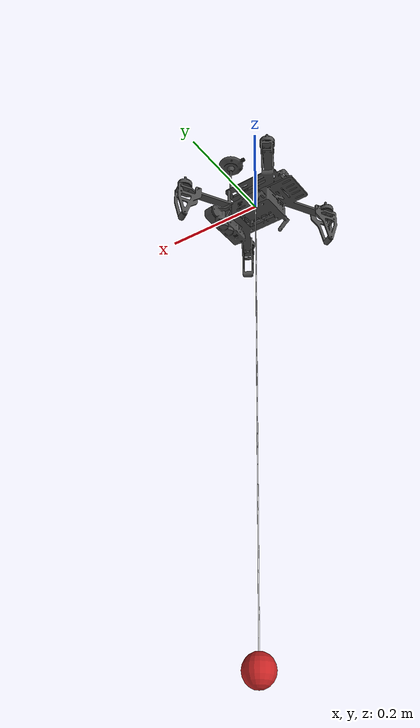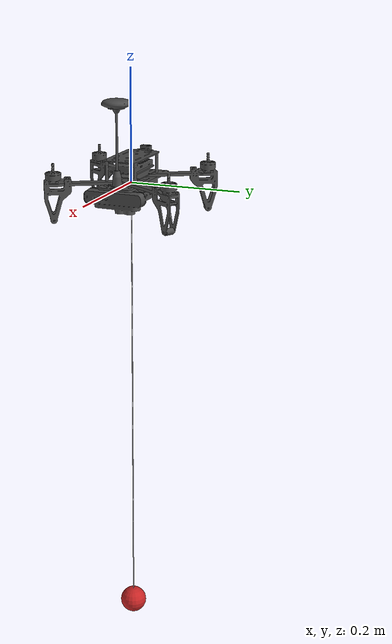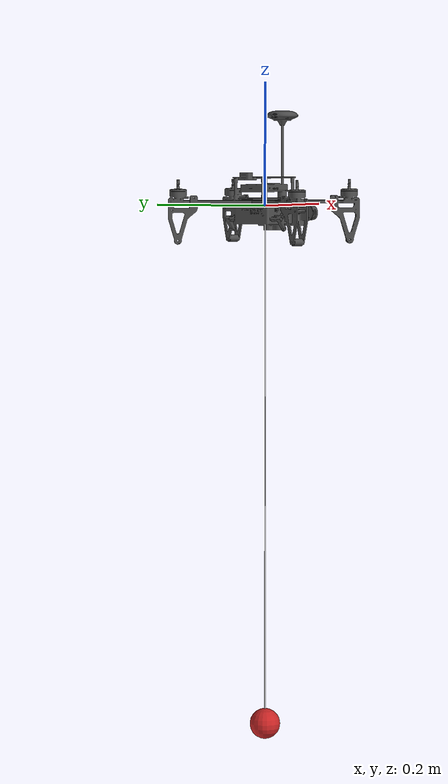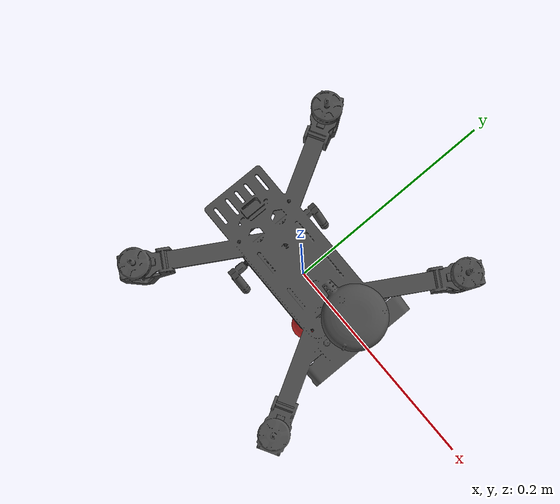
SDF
<?xml version='1.0'?>
<sdf version='1.6'>
  <enable_lockstep>false</enable_lockstep>
  <model name='px4vision_sls_gazebo'>
  <static>false</static>

  <link name='base_link'>
    <pose>0 0 0 0 -0 0</pose>
    <inertial>
      <pose>0 0 0 0 -0 0</pose>
      <mass>1.5</mass>
      <inertia>
        <ixx>0.029125</ixx>
        <ixy>0</ixy>
        <ixz>0</ixz>
        <iyy>0.029125</iyy>
        <iyz>0</iyz>
        <izz>0.055225</izz>
      </inertia>
    </inertial>
    <collision name='base_link_inertia_collision'>
      <pose>0 0 0 0 -0 0</pose>
      <geometry>
        <box>
          <size>0.365 0.365 0.11</size>
        </box>
      </geometry>
      <surface>
        <contact>
          <ode>
            <min_depth>0.001</min_depth>
            <max_vel>0</max_vel>
          </ode>
        </contact>
        <friction>
          <ode/>
        </friction>
      </surface>
    </collision>
    <visual name='base_link_inertia_visual'>
      <pose>0 0 0 1.5707 0 -0.01</pose>
      <geometry>
        <mesh>
          <scale>0.001 0.001 0.001</scale>
          <uri>model://px4vision/meshes/body.dae</uri>
        </mesh>
      </geometry>
      <material>
        <script>
          <name>Gazebo/DarkGrey</name>
          <uri>file://media/materials/scripts/gazebo.material</uri>
        </script>
      </material>
    </visual>
    <gravity>1</gravity>
    <velocity_decay/>
  </link>

  <plugin name='rosbag' filename='libgazebo_multirotor_base_plugin.so'>
    <robotNamespace/>
    <linkName>base_link</linkName>
    <rotorVelocitySlowdownSim>10</rotorVelocitySlowdownSim>
  </plugin>

  <link name='pendulum'>
    <pose>0 0 -0.425 0 0 0</pose>
    <inertial>
      <mass>0.01</mass>
      <inertia>
        <ixx>0.00060208</ixx>
        <ixy>0</ixy>
        <ixz>0</ixz>
        <iyy>0.00060208</iyy>
        <iyz>0</iyz>
        <izz>0.000000005</izz>
      </inertia>
    </inertial>

    <visual name='pendulum_visual'>
      <geometry>
        <cylinder>
          <radius>0.001</radius>
          <length>0.85</length>
        </cylinder>
      </geometry>
      <material>
        <script>
          <name>Gazebo/White</name>
          <uri>file://media/materials/scripts/gazebo.material</uri>
        </script>
      </material>
    </visual>
    <gravity>1</gravity>

  </link>

  <link name='load'>
    <pose>0 0 -0.85 0 0 0</pose>
    <inertial>
      <mass>0.25</mass>
      <inertia>
        <ixx>0.0000625</ixx>
        <ixy>0</ixy>
        <ixz>0</ixz>
        <iyy>0.0000625</iyy>
        <iyz>0</iyz>
        <izz>0.0000625</izz>
      </inertia>
    </inertial>

    <visual name='load_visual'>
      <geometry>
        <sphere>
          <radius>0.025 0.025 0.025</radius>
        </sphere>
      </geometry>
      <material>
        <script>
          <name>Gazebo/Red</name>
          <uri>file://media/materials/scripts/gazebo.material</uri>
        </script>
      </material>
    </visual>
    <gravity>1</gravity>
  </link>

  <joint name='load_joint' type='ball'>
    <pose>0 0 0.0 0 0 0</pose>
    <child>load</child>
    <parent>pendulum</parent>
  </joint>

  <joint name='pendulum_joint' type='universal'>
    <pose>0 0 0.425 0 0 0</pose>
    <child>pendulum</child>
    <parent>base_link</parent>
  </joint>

  <plugin name="GazeboSlsForceControlPlugin" filename="libgazebo_sls_force_control_plugin.so" />

  </model>
</sdf>
